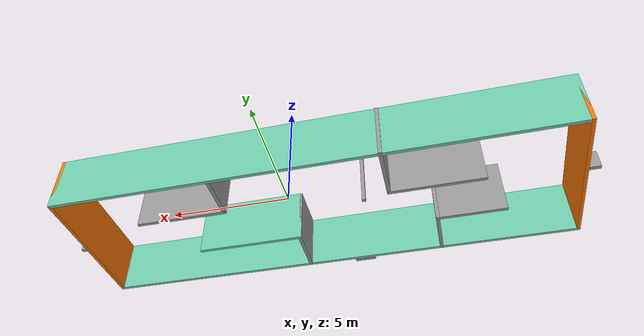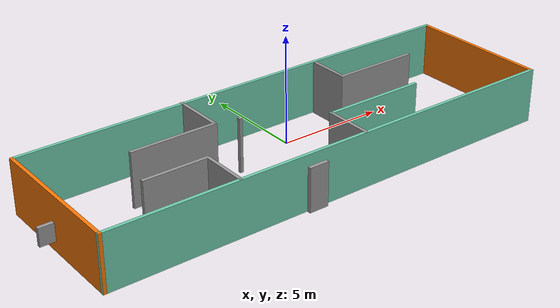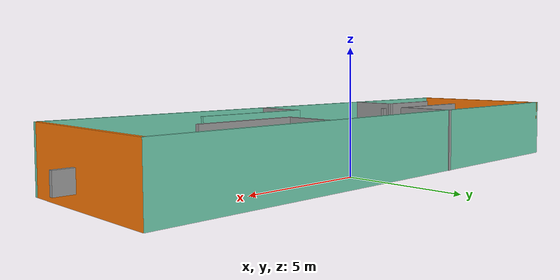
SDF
<?xml version='1.0'?>
<sdf version='1.6'>
  <model name='Building'>
    <pose frame=''>-0.946408 -1.54784 0 0 -0 0</pose>
    <link name='Door_0'>
      <collision name='Door_0_Collision'>
        <geometry>
          <box>
            <size>0.9 0.17 2</size>
          </box>
        </geometry>
        <pose frame=''>0 0 1 0 -0 0</pose>
      </collision>
      <visual name='Door_0_Visual'>
        <pose frame=''>0 0 1 0 -0 0</pose>
        <geometry>
          <box>
            <size>0.9 0.17 2</size>
          </box>
        </geometry>
        <material>
          <script>
            <uri>file://media/materials/scripts/gazebo.material</uri>
            <name>Gazebo/Grey</name>
          </script>
        </material>
      </visual>
      <pose frame=''>-1.39357 -3.49419 0 0 -0 0</pose>
    </link>
    <link name='Wall_1'>
      <collision name='Wall_1_Collision'>
        <geometry>
          <box>
            <size>0.15 0.15 2.5</size>
          </box>
        </geometry>
        <pose frame=''>0 0 1.25 0 -0 0</pose>
      </collision>
      <visual name='Wall_1_Visual'>
        <pose frame=''>0 0 1.25 0 -0 0</pose>
        <geometry>
          <box>
            <size>0.15 0.15 2.5</size>
          </box>
        </geometry>
        <material>
          <script>
            <uri>file://media/materials/scripts/gazebo.material</uri>
            <name>Gazebo/Grey</name>
          </script>
          <ambient>1 1 1 1</ambient>
        </material>
      </visual>
      <pose frame=''>-2.04404 0.733127 0 0 -0 0</pose>
    </link>
    <link name='Wall_10'>
      <collision name='Wall_10_Collision'>
        <geometry>
          <box>
            <size>4 0.15 2.5</size>
          </box>
        </geometry>
        <pose frame=''>0 0 1.25 0 -0 0</pose>
      </collision>
      <visual name='Wall_10_Visual'>
        <pose frame=''>0 0 1.25 0 -0 0</pose>
        <geometry>
          <box>
            <size>4 0.15 2.5</size>
          </box>
        </geometry>
        <material>
          <script>
            <uri>file://media/materials/scripts/gazebo.material</uri>
            <name>Gazebo/Grey</name>
          </script>
          <ambient>1 1 1 1</ambient>
        </material>
      </visual>
      <pose frame=''>-5.04258 0.96914 0 0 -0 3.14159</pose>
    </link>
    <link name='Wall_12'>
      <collision name='Wall_12_Collision'>
        <geometry>
          <box>
            <size>2.5 0.15 2.5</size>
          </box>
        </geometry>
        <pose frame=''>0 0 1.25 0 -0 0</pose>
      </collision>
      <visual name='Wall_12_Visual'>
        <pose frame=''>0 0 1.25 0 -0 0</pose>
        <geometry>
          <box>
            <size>2.5 0.15 2.5</size>
          </box>
        </geometry>
        <material>
          <script>
            <uri>file://media/materials/scripts/gazebo.material</uri>
            <name>Gazebo/Grey</name>
          </script>
          <ambient>1 1 1 1</ambient>
        </material>
      </visual>
      <pose frame=''>-3.11758 2.14414 0 0 -0 1.5708</pose>
    </link>
    <link name='Wall_14'>
      <collision name='Wall_14_Collision'>
        <geometry>
          <box>
            <size>2 0.15 2.5</size>
          </box>
        </geometry>
        <pose frame=''>0 0 1.25 0 -0 0</pose>
      </collision>
      <visual name='Wall_14_Visual'>
        <pose frame=''>0 0 1.25 0 -0 0</pose>
        <geometry>
          <box>
            <size>2 0.15 2.5</size>
          </box>
        </geometry>
        <material>
          <script>
            <uri>file://media/materials/scripts/gazebo.material</uri>
            <name>Gazebo/Grey</name>
          </script>
          <ambient>1 1 1 1</ambient>
        </material>
      </visual>
      <pose frame=''>3.83894 2.20463 0 0 0 -1.5708</pose>
    </link>
    <link name='Wall_15'>
      <collision name='Wall_15_Collision'>
        <geometry>
          <box>
            <size>4 0.15 2.5</size>
          </box>
        </geometry>
        <pose frame=''>0 0 1.25 0 -0 0</pose>
      </collision>
      <visual name='Wall_15_Visual'>
        <pose frame=''>0 0 1.25 0 -0 0</pose>
        <geometry>
          <box>
            <size>4 0.15 2.5</size>
          </box>
        </geometry>
        <material>
          <script>
            <uri>file://media/materials/scripts/gazebo.material</uri>
            <name>Gazebo/Grey</name>
          </script>
          <ambient>1 1 1 1</ambient>
        </material>
      </visual>
      <pose frame=''>5.76394 1.27963 0 0 -0 0</pose>
    </link>
    <link name='Wall_17'>
      <collision name='Wall_17_Collision'>
        <geometry>
          <box>
            <size>2.25 0.15 2.5</size>
          </box>
        </geometry>
        <pose frame=''>0 0 1.25 0 -0 0</pose>
      </collision>
      <visual name='Wall_17_Visual'>
        <pose frame=''>0 0 1.25 0 -0 0</pose>
        <geometry>
          <box>
            <size>2.25 0.15 2.5</size>
          </box>
        </geometry>
        <material>
          <script>
            <uri>file://media/materials/scripts/gazebo.material</uri>
            <name>Gazebo/Grey</name>
          </script>
          <ambient>1 1 1 1</ambient>
        </material>
      </visual>
      <pose frame=''>1.17732 -2.23247 0 0 -0 1.5708</pose>
    </link>
    <link name='Wall_18'>
      <collision name='Wall_18_Collision'>
        <geometry>
          <box>
            <size>4.75 0.15 2.5</size>
          </box>
        </geometry>
        <pose frame=''>0 0 1.25 0 -0 0</pose>
      </collision>
      <visual name='Wall_18_Visual'>
        <pose frame=''>0 0 1.25 0 -0 0</pose>
        <geometry>
          <box>
            <size>4.75 0.15 2.5</size>
          </box>
        </geometry>
        <material>
          <script>
            <uri>file://media/materials/scripts/gazebo.material</uri>
            <name>Gazebo/Grey</name>
          </script>
          <ambient>0.435294 0.796078 0.67451 1</ambient>
        </material>
      </visual>
      <pose frame=''>3.47732 -1.18247 0 0 -0 0</pose>
    </link>
    <link name='Wall_20'>
      <collision name='Wall_20_Collision'>
        <geometry>
          <box>
            <size>2.25 0.15 2.5</size>
          </box>
        </geometry>
        <pose frame=''>0 0 1.25 0 -0 0</pose>
      </collision>
      <visual name='Wall_20_Visual'>
        <pose frame=''>0 0 1.25 0 -0 0</pose>
        <geometry>
          <box>
            <size>2.25 0.15 2.5</size>
          </box>
        </geometry>
        <material>
          <script>
            <uri>file://media/materials/scripts/gazebo.material</uri>
            <name>Gazebo/Grey</name>
          </script>
          <ambient>1 1 1 1</ambient>
        </material>
      </visual>
      <pose frame=''>-4.90208 -2.23247 0 0 -0 1.5708</pose>
    </link>
    <link name='Wall_21'>
      <collision name='Wall_21_Collision'>
        <geometry>
          <box>
            <size>3 0.15 2.5</size>
          </box>
        </geometry>
        <pose frame=''>0 0 1.25 0 -0 0</pose>
      </collision>
      <visual name='Wall_21_Visual'>
        <pose frame=''>0 0 1.25 0 -0 0</pose>
        <geometry>
          <box>
            <size>3 0.15 2.5</size>
          </box>
        </geometry>
        <material>
          <script>
            <uri>file://media/materials/scripts/gazebo.material</uri>
            <name>Gazebo/Grey</name>
          </script>
          <ambient>1 1 1 1</ambient>
        </material>
      </visual>
      <pose frame=''>-6.32708 -1.18247 0 0 -0 3.14159</pose>
    </link>
    <link name='Wall_3'>
      <collision name='Wall_3_Collision'>
        <geometry>
          <box>
            <size>21.75 0.15 2.5</size>
          </box>
        </geometry>
        <pose frame=''>0 0 1.25 0 -0 0</pose>
      </collision>
      <visual name='Wall_3_Visual'>
        <pose frame=''>0 0 1.25 0 -0 0</pose>
        <geometry>
          <box>
            <size>21.75 0.15 2.5</size>
          </box>
        </geometry>
        <material>
          <script>
            <uri>file://media/materials/scripts/gazebo.material</uri>
            <name>Gazebo/Grey</name>
          </script>
          <ambient>0.435294 0.796078 0.67451 1</ambient>
        </material>
      </visual>
      <pose frame=''>0 3.28086 0 0 -0 0</pose>
    </link>
    <link name='Wall_4'>
      <collision name='Wall_4_Collision'>
        <geometry>
          <box>
            <size>6.75 0.15 2.5</size>
          </box>
        </geometry>
        <pose frame=''>0 0 1.25 0 -0 0</pose>
      </collision>
      <visual name='Wall_4_Visual'>
        <pose frame=''>0 0 1.25 0 -0 0</pose>
        <geometry>
          <box>
            <size>6.75 0.15 2.5</size>
          </box>
        </geometry>
        <material>
          <script>
            <uri>file://media/materials/scripts/gazebo.material</uri>
            <name>Gazebo/Grey</name>
          </script>
          <ambient>0.996078 0.47451 0.0196078 1</ambient>
        </material>
      </visual>
      <pose frame=''>10.8 -0.01914 0 0 0 -1.5708</pose>
    </link>
    <link name='Wall_6'>
      <collision name='Wall_6_Collision'>
        <geometry>
          <box>
            <size>21.75 0.15 2.5</size>
          </box>
        </geometry>
        <pose frame=''>0 0 1.25 0 -0 0</pose>
      </collision>
      <visual name='Wall_6_Visual'>
        <pose frame=''>0 0 1.25 0 -0 0</pose>
        <geometry>
          <box>
            <size>21.75 0.15 2.5</size>
          </box>
        </geometry>
        <material>
          <script>
            <uri>file://media/materials/scripts/gazebo.material</uri>
            <name>Gazebo/Grey</name>
          </script>
          <ambient>0.435294 0.796078 0.67451 1</ambient>
        </material>
      </visual>
      <pose frame=''>0 -3.31914 0 0 -0 3.14159</pose>
    </link>
    <link name='Wall_7'>
      <collision name='Wall_7_Collision'>
        <geometry>
          <box>
            <size>6.75 0.15 2.5</size>
          </box>
        </geometry>
        <pose frame=''>0 0 1.25 0 -0 0</pose>
      </collision>
      <visual name='Wall_7_Visual'>
        <pose frame=''>0 0 1.25 0 -0 0</pose>
        <geometry>
          <box>
            <size>6.75 0.15 2.5</size>
          </box>
        </geometry>
        <material>
          <script>
            <uri>file://media/materials/scripts/gazebo.material</uri>
            <name>Gazebo/Grey</name>
          </script>
          <ambient>0.996078 0.47451 0.0196078 1</ambient>
        </material>
      </visual>
      <pose frame=''>-10.8 -0.01914 0 0 -0 1.5708</pose>
    </link>
    <link name='Window_0'>
      <collision name='Window_0_Collision'>
        <geometry>
          <box>
            <size>0.8 0.17 0.8</size>
          </box>
        </geometry>
        <pose frame=''>0 0 0.4 0 -0 0</pose>
      </collision>
      <visual name='Window_0_Visual'>
        <pose frame=''>0 0 0.4 0 -0 0</pose>
        <geometry>
          <box>
            <size>0.8 0.17 0.8</size>
          </box>
        </geometry>
        <material>
          <script>
            <uri>file://media/materials/scripts/gazebo.material</uri>
            <name>Gazebo/Grey</name>
          </script>
        </material>
      </visual>
      <pose frame=''>11.1887 -0.530104 0.5 0 -0 0</pose>
    </link>
    <link name='Window_1'>
      <collision name='Window_1_Collision'>
        <geometry>
          <box>
            <size>0.8 0.17 0.8</size>
          </box>
        </geometry>
        <pose frame=''>0 0 0.4 0 -0 0</pose>
      </collision>
      <visual name='Window_1_Visual'>
        <pose frame=''>0 0 0.4 0 -0 0</pose>
        <geometry>
          <box>
            <size>0.8 0.17 0.8</size>
          </box>
        </geometry>
        <material>
          <script>
            <uri>file://media/materials/scripts/gazebo.material</uri>
            <name>Gazebo/Grey</name>
          </script>
        </material>
      </visual>
      <pose frame=''>-11.1327 0.044566 0.5 0 -0 0</pose>
    </link>
    <static>1</static>
  </model>
</sdf>
